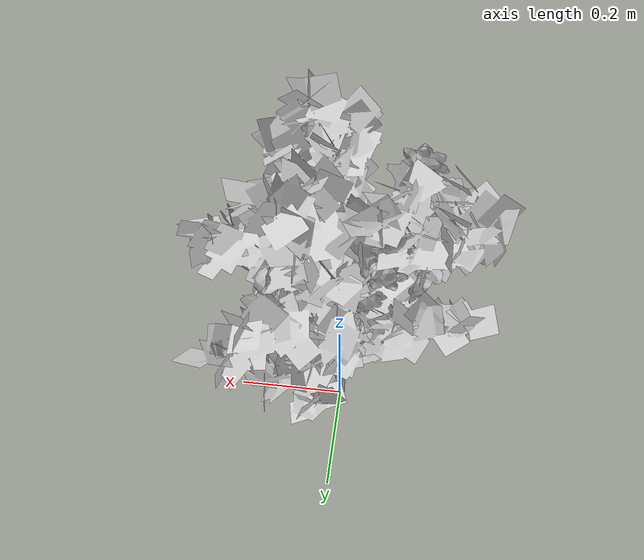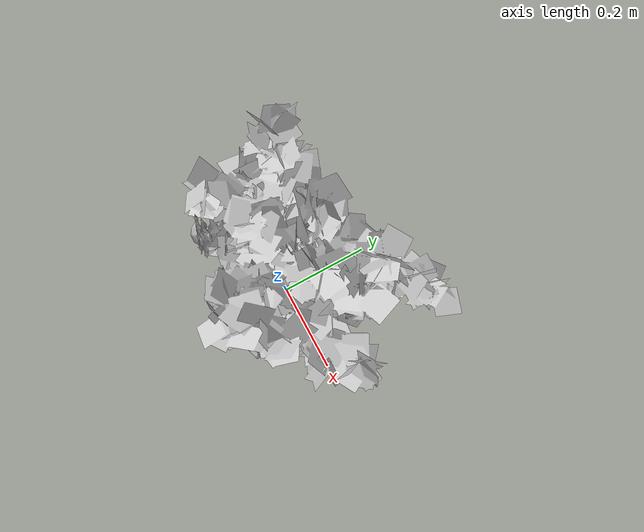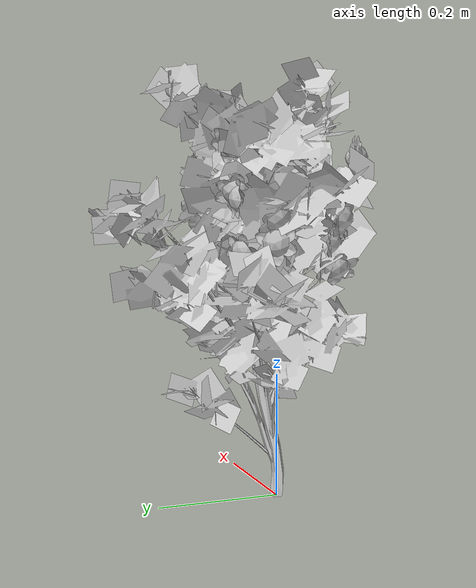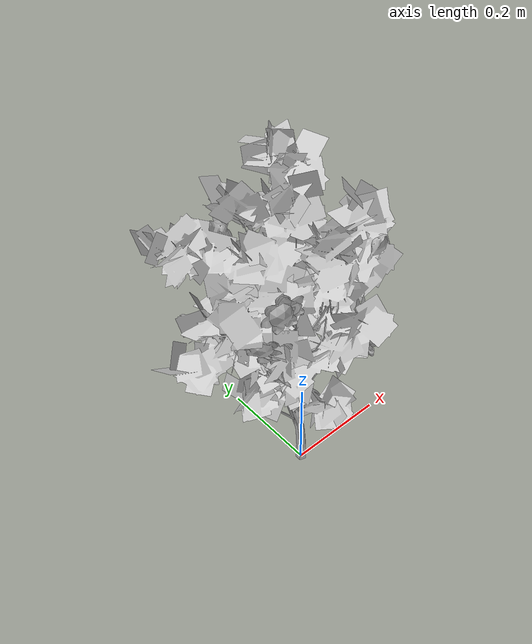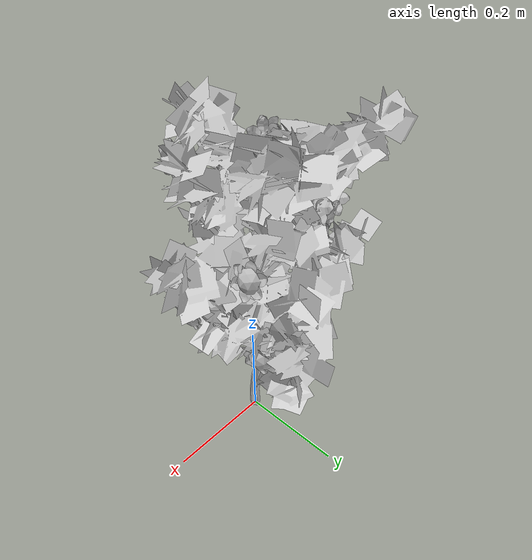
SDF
<?xml version="1.0" ?>
<sdf version="1.6">
  <model name="tree-flowers">
    <!--Skew-Seed:2514486521-->
    <static>true</static>
    <link name="link"/>
    <include>
      <uri>model://tree-mesh</uri>
      <pose>0 0 0 0 0 0</pose>
    </include>
    <joint name="tree_joint" type="fixed">
      <child>tree-mesh::link</child>
      <parent>link</parent>
    </joint>
    <include>
      <name>bramble_0</name>
      <uri>model://bramble</uri>
      <pose> 0.08901441143677469 -0.04606560698052524 0.3124847146824543 -0.23725365563691814 1.3435349394430667 0.0</pose>
    </include>
    <joint name="flower_joint_0" type="fixed">
      <child>bramble_0::flower_link</child>
      <parent>link</parent>
    </joint>
    <include>
      <name>bramble_1</name>
      <uri>model://bramble</uri>
      <pose> -0.1118950037784526 -0.06895129576919301 0.5523308473425983 -4.3540723701624 1.5413715171399591 0.0</pose>
    </include>
    <joint name="flower_joint_1" type="fixed">
      <child>bramble_1::flower_link</child>
      <parent>link</parent>
    </joint>
    <include>
      <name>bramble_2</name>
      <uri>model://bramble</uri>
      <pose> 0.10141834359378216 0.12234991313226137 0.30900953713682355 -0.33684975681505736 1.717041621946246 0.0</pose>
    </include>
    <joint name="flower_joint_2" type="fixed">
      <child>bramble_2::flower_link</child>
      <parent>link</parent>
    </joint>
    <include>
      <name>bramble_3</name>
      <uri>model://bramble</uri>
      <pose> -0.05925949744502432 0.09110288611036939 0.5048960737564616 -2.7877629652982607 1.088188583874936 0.0</pose>
    </include>
    <joint name="flower_joint_3" type="fixed">
      <child>bramble_3::flower_link</child>
      <parent>link</parent>
    </joint>
    <include>
      <name>bramble_4</name>
      <uri>model://bramble</uri>
      <pose> -0.08211515733653585 0.10535070502386787 0.5770058248127925 -2.304858077861737 0.7974440015683537 0.0</pose>
    </include>
    <joint name="flower_joint_4" type="fixed">
      <child>bramble_4::flower_link</child>
      <parent>link</parent>
    </joint>
    <include>
      <name>bramble_5</name>
      <uri>model://bramble</uri>
      <pose> -0.13952357036397 0.057200183906427844 0.4716047566197075 -3.3025183854380824 0.8969321468643618 0.0</pose>
    </include>
    <joint name="flower_joint_5" type="fixed">
      <child>bramble_5::flower_link</child>
      <parent>link</parent>
    </joint>
    <include>
      <name>bramble_6</name>
      <uri>model://bramble</uri>
      <pose> 0.07137836175131312 -0.07952375974248324 0.5827137881636005 0.9928344045276699 2.3034376733243134 0.0</pose>
    </include>
    <joint name="flower_joint_6" type="fixed">
      <child>bramble_6::flower_link</child>
      <parent>link</parent>
    </joint>
    <include>
      <name>bramble_7</name>
      <uri>model://bramble</uri>
      <pose> -0.07665070178649969 0.08902958350801327 0.49303359624722 -1.504574974236577 1.0354503300614064 0.0</pose>
    </include>
    <joint name="flower_joint_7" type="fixed">
      <child>bramble_7::flower_link</child>
      <parent>link</parent>
    </joint>
    <include>
      <name>bramble_8</name>
      <uri>model://bramble</uri>
      <pose> 0.0952167166189073 0.09718541016819289 0.45341658509758065 -0.1295570395091501 1.1482688372153493 0.0</pose>
    </include>
    <joint name="flower_joint_8" type="fixed">
      <child>bramble_8::flower_link</child>
      <parent>link</parent>
    </joint>
    <include>
      <name>bramble_9</name>
      <uri>model://bramble</uri>
      <pose> -0.125845681349689 0.050721000538998876 0.4293721936659196 -2.531519730280868 1.6832522880004948 0.0</pose>
    </include>
    <joint name="flower_joint_9" type="fixed">
      <child>bramble_9::flower_link</child>
      <parent>link</parent>
    </joint>
    <include>
      <name>bramble_10</name>
      <uri>model://bramble</uri>
      <pose> -0.10511761241726475 -0.040748596384006325 0.4286275730545181 -4.090752952285351 1.4643950152540834 0.0</pose>
    </include>
    <joint name="flower_joint_10" type="fixed">
      <child>bramble_10::flower_link</child>
      <parent>link</parent>
    </joint>
    <include>
      <name>bramble_11</name>
      <uri>model://bramble</uri>
      <pose> -0.10525049821872035 -0.05366767932169397 0.3885626050300514 -3.1154342702375457 0.9428614967968385 0.0</pose>
    </include>
    <joint name="flower_joint_11" type="fixed">
      <child>bramble_11::flower_link</child>
      <parent>link</parent>
    </joint>
    <include>
      <name>bramble_12</name>
      <uri>model://bramble</uri>
      <pose> -0.1354277186941179 -0.04574899060011828 0.4658925200245154 -3.8628618927716913 1.186981520187043 0.0</pose>
    </include>
    <joint name="flower_joint_12" type="fixed">
      <child>bramble_12::flower_link</child>
      <parent>link</parent>
    </joint>
    <include>
      <name>bramble_13</name>
      <uri>model://bramble</uri>
      <pose> -0.12452994144682475 -0.07469224331238558 0.5526499651186576 -4.401258085654051 1.921557125788991 0.0</pose>
    </include>
    <joint name="flower_joint_13" type="fixed">
      <child>bramble_13::flower_link</child>
      <parent>link</parent>
    </joint>
    <include>
      <name>bramble_14</name>
      <uri>model://bramble</uri>
      <pose> 0.10480216407293508 -0.042391362750352435 0.301537983835808 -0.09744451961531136 1.8289248863360228 0.0</pose>
    </include>
    <joint name="flower_joint_14" type="fixed">
      <child>bramble_14::flower_link</child>
      <parent>link</parent>
    </joint>
    <include>
      <name>bramble_15</name>
      <uri>model://bramble</uri>
      <pose> -0.05265113533679766 0.07351972260745891 0.4089515466598297 -2.0980368724372847 1.0657342625099595 0.0</pose>
    </include>
    <joint name="flower_joint_15" type="fixed">
      <child>bramble_15::flower_link</child>
      <parent>link</parent>
    </joint>
  </model>
</sdf>

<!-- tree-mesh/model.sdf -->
<sdf version="1.6">
  <model name="tree-mesh">
    <static>true</static>
    <link name="link">

      <collision name="collision">
        <geometry>
          <mesh>
            <uri>model://tree-mesh/meshes/new_tree.dae</uri>
            <scale>0.0625 0.0625 0.0625</scale>
          </mesh>
        </geometry>
      </collision>

      <!-- simplified collision for sake of speed since leaves shouldn't be blocking anyway -->

      <visual name="leaves">
        <geometry>
          <mesh>
            <uri>model://tree-mesh/meshes/leaves.dae</uri>
            <scale>0.0325 0.0325 0.0325</scale>
          </mesh>
        </geometry>
        <material>
          <script>
            <uri>model://tree-mesh/materials/scripts/</uri>
            <uri>model://tree-mesh/materials/textures/</uri>
            <name>NewTree/Branch</name>
          </script>
        </material>
      </visual>
      <visual name="bark">
        <geometry>
          <mesh>
            <uri>model://tree-mesh/meshes/bark.dae</uri>
            <scale>0.0325 0.0325 0.0325</scale>
          </mesh>
        </geometry>
        <material>
          <script>
            <uri>model://tree-mesh/materials/scripts/</uri>
            <uri>model://tree-mesh/materials/textures/</uri>
            <name>NewTree/Bark</name>
          </script>
        </material>
      </visual>
    </link>
  </model>
</sdf>

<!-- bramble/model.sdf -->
<sdf version="1.6">
  <model name="bramble-flower">
    <static>true</static>
    <link name="flower_link">
      <collision name="body_collision">
        <geometry>
          <mesh>
            <uri>model://bramble/meshes/bramble.dae</uri>
            <scale>0.4 0.4 0.4</scale>
          </mesh>
        </geometry>
      </collision>
      <visual name="petals">
        <geometry>
          <mesh>
            <uri>model://bramble/meshes/bramble.dae</uri>
            <scale>0.4 0.4 0.4</scale>
            <submesh>
              <name>petal</name>
            </submesh>
          </mesh>
        </geometry>
        <material>
          <script>
            <uri>model://bramble/materials/scripts/</uri>
            <uri>model://bramble/materials/textures/</uri>
            <name>Bramble/Petal</name>
          </script>
        </material>
      </visual>
      <visual name="carpel">
        <geometry>
          <mesh>
            <uri>model://bramble/meshes/bramble.dae</uri>
            <scale>0.4 0.4 0.4</scale>
            <submesh>
              <name>carpel</name>
            </submesh>
          </mesh>
        </geometry>
        <material>
          <script>
            <uri>model://bramble/materials/scripts/</uri>
            <uri>model://bramble/materials/textures/</uri>
            <name>Bramble/Carpel</name>
          </script>
        </material>
      </visual>
      <visual name="stamen">
        <geometry>
          <mesh>
            <uri>model://bramble/meshes/bramble.dae</uri>
            <scale>0.4 0.4 0.4</scale>
            <submesh>
              <name>stamen</name>
            </submesh>
          </mesh>
        </geometry>
        <material>
          <script>
            <uri>model://bramble/materials/scripts/</uri>
            <uri>model://bramble/materials/textures/</uri>
            <name>Bramble/Stamen</name>
          </script>
        </material>
      </visual>
    </link>
  </model>
</sdf>
